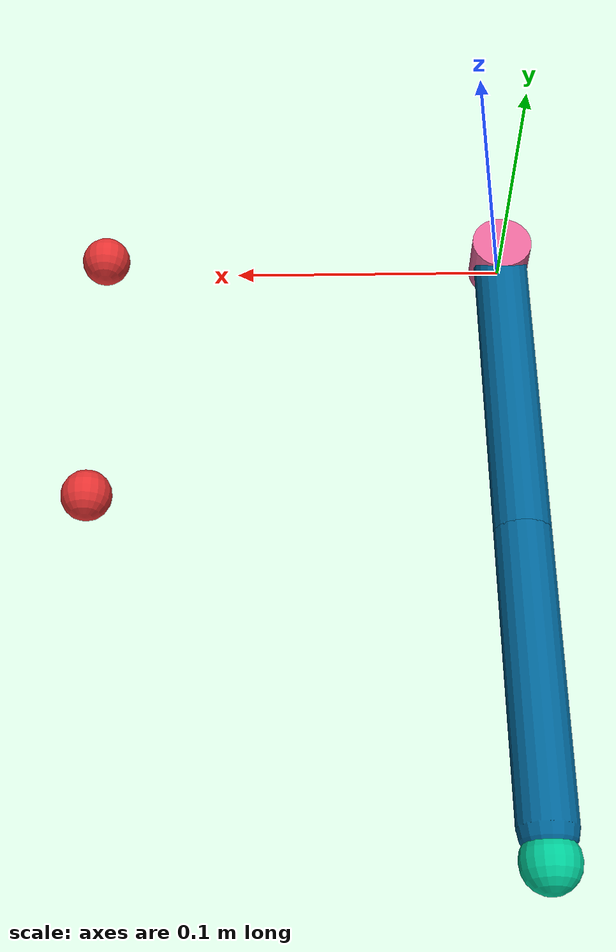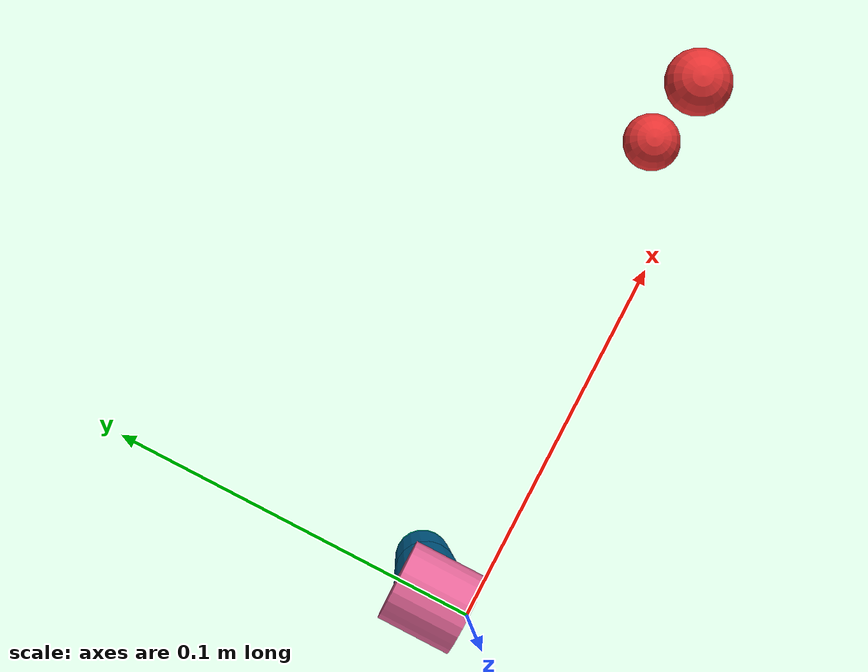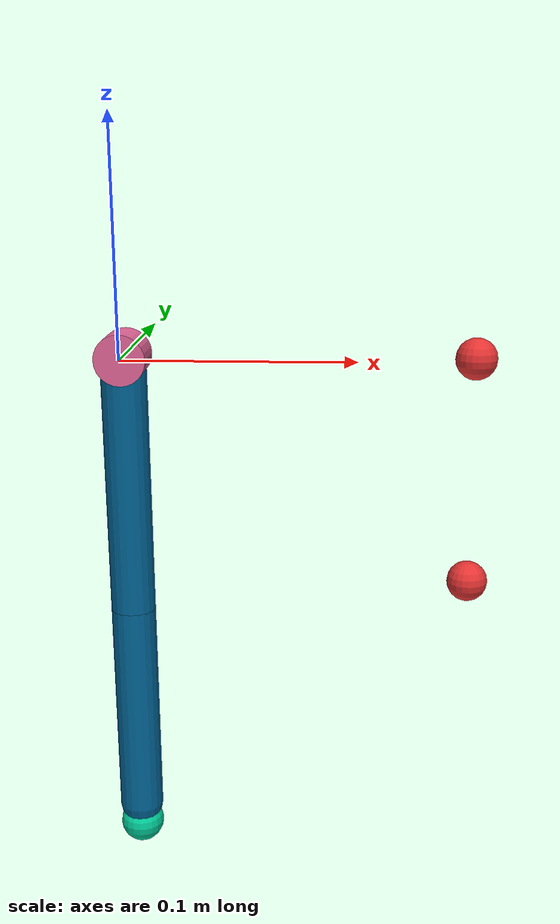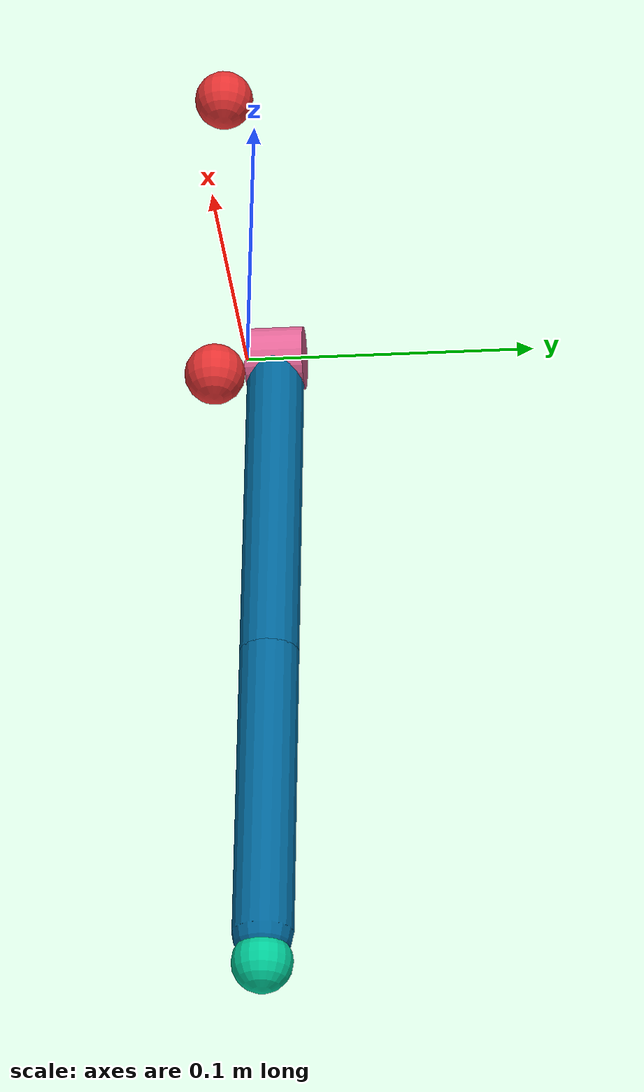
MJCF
<mujoco model="verticalArm">
	<compiler angle="radian" inertiafromgeom="auto"/>
	<default>
		<joint armature="1" damping="1" limited="true"/>
		<geom contype="0" friction="1 0.1 0.1" rgba="0.7 0.7 0 1"/>
	</default>
	<option gravity="0 0 -9.81" integrator="RK4" timestep="0.01"/>
	<worldbody>

		<!-- Arm -->
		<geom conaffinity="0" contype="0" fromto="0 0 0 0 0.02 0" name="root" rgba="0.9 0.4 0.6 1" size=".011" type="cylinder"/>
		<body name="shoulder" pos="0 0.01 -.005">
			<geom fromto="0 0 0 0 0 -0.11" name="shoulder" rgba="0.0 0.4 0.6 1" size=".01" type="capsule" mass="2"/>
			<joint axis="0 1 0" limited="false" range="-2 0.5" name="shoulder" pos="0 0 0" type="hinge" damping="1"  stiffness="0"/>
			<site name="shoulder" pos="0 0 0" size=".003 .003 .003" type="ellipsoid" rgba="0.3 0.2 0.1 0.3"/>
			<body name="elbow" pos="0 0 -0.11">
				<joint axis="0 1 0" limited="false" name="elbow" pos="0 0 0" range="-2. 0" type="hinge" damping="0."  stiffness="0"/>#-2.8
				<site name="elbow" pos="0 0 0" size=".003 .003 .003" type="ellipsoid" rgba="0.3 0.2 0.1 0.3"/>
				<geom fromto="0 0 0 0 0 -0.1" name="elbow" rgba="0.0 0.4 0.6 1" size=".01" type="capsule" mass="1"/>#5.75
				<body name="fingertip" pos="0 0 -0.11">
					<geom contype="0" name="fingertip" pos="0 0 0" rgba="0.0 0.8 0.6 1" size=".01" type="sphere"  mass="0.33"/>#2
				</body>
			</body>
		</body>

		<!-- Target -->

		<body name="target" pos=".15 0.01 -.1">
			<site  name="target" pos="0 0 0" rgba="0.9 0.2 0.2 1" size=".009 .009 .009" type="sphere" />

		</body>
		<body name="target1" pos=".15 0.01 0.">
			<site  name="target1" pos="0 0 0" rgba="0.9 0.2 0.2 1" size=".009 .009 .009" type="sphere" />

		</body>

	</worldbody>
	<actuator>
		<motor ctrllimited="true" ctrlrange="-1.0 1.0" gear="30.0" joint="shoulder"/>
		<motor ctrllimited="true" ctrlrange="-1.0 1.0" gear="25.0" joint="elbow"/>
	</actuator>
	<sensor>
        <torque site="shoulder" name="torque_sensor0"/>
		<torque site="elbow" name="torque_sensor1"/>
  </sensor>
</mujoco>
